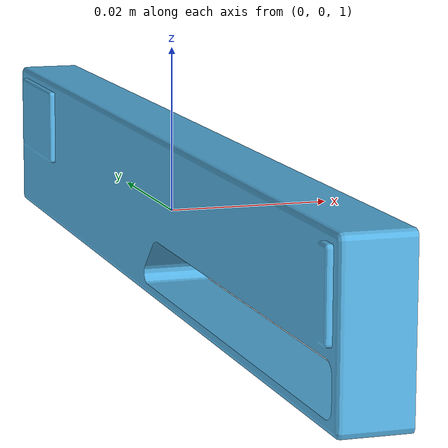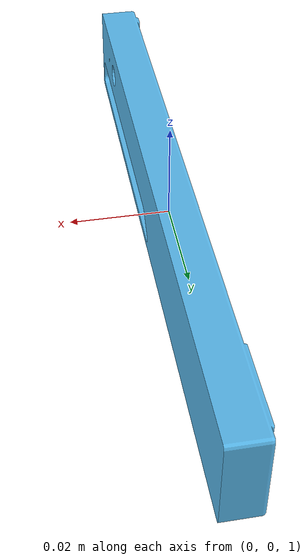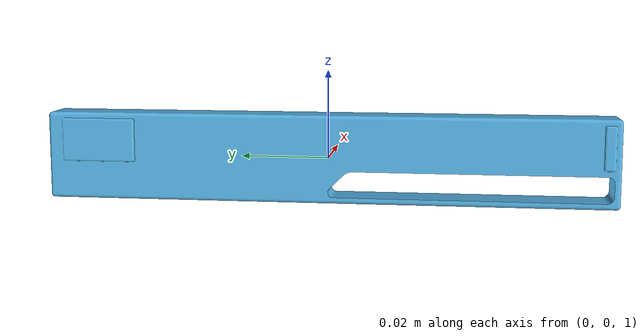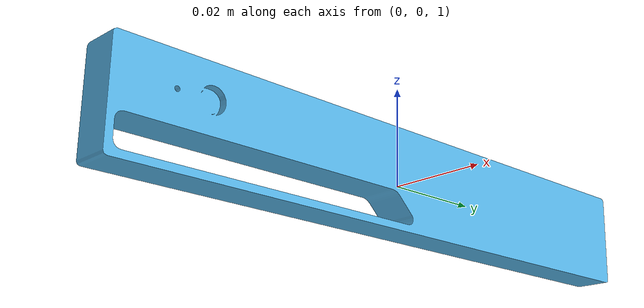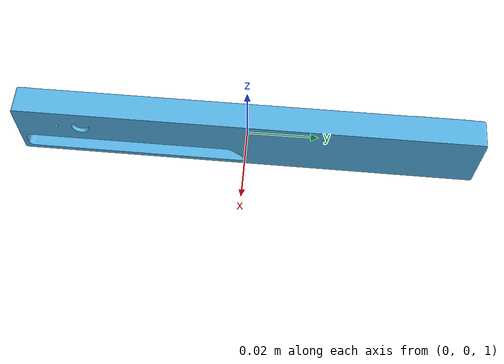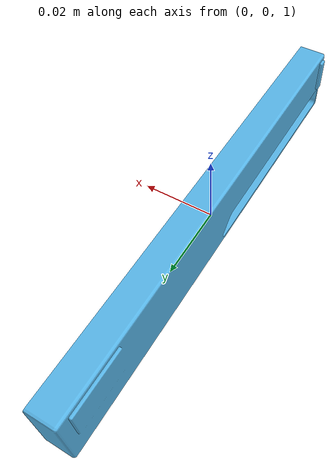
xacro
<?xml version="1.0"?>
<!--Develped by Daniel Ordonez 22.05.2018 - daniels.ordonez@gmail.com
  INFORMATION:
    This is an example of how to use the realsense-rs200 macro function.
-->
<robot name="robot_with_rs200" xmlns:xacro="http://ros.org/wiki/xacro">
    <link name="world"/>

    <!-- Import macro for realsense-RS200 camera-->
    <xacro:include filename="$(find realsense_gazebo_plugin)/urdf/realsense-RS200.macro.xacro"/>
    <!-- Create camera instance -->
    <xacro:realsense-rs200 prefix="" parent="world">
        <origin xyz="0 0 1.0" rpy="0 0 0" />
    </xacro:realsense-rs200>
</robot>

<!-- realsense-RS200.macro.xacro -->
<robot xmlns:xacro="http://ros.org/wiki/xacro">
<xacro:macro name="realsense-rs200" params="prefix parent *origin">

    <!-- Camera link -->
    <link name="${prefix}rs200_camera">
        <visual>
            <origin rpy="0 0 0" xyz="0 0 0"/>
            <geometry>
                <mesh filename="package://realsense_gazebo_plugin/models/realsense_camera/meshes/realsense.dae"/>
            </geometry>
        </visual>
        <collision>
            <geometry>
                <box size="0.0078 0.130 0.0192"/>
            </geometry>
        </collision>
        <inertial>
            <mass value="0.0615752"/>
            <origin rpy="0 0 0" xyz="0 0 0"/>
            <inertia ixx="9.108e-05"
                     ixy="0"
                     ixz="0"
                     iyy="2.51e-06"
                     iyz="0"
                     izz="8.931e-05"
            />
        </inertial>
    </link>

    <!-- Connect camera to parent frame-->
    <joint name="${prefix}realsense_joint" type="fixed">
        <parent link="${parent}"/>
        <child link="${prefix}rs200_camera"/>
        <xacro:insert_block name="origin"/>
    </joint>

    <!-- Virtual links representing the cameras positons and orientations-->
    <link name="${prefix}color" />
    <link name="${prefix}depth" />
    <link name="${prefix}ired1" />
    <link name="${prefix}ired2" />

    <!-- Joints positioning the virtual links with respect to the camera main link-->
    <joint name="${prefix}color_joint" type="fixed">
        <parent link="${prefix}rs200_camera" />
        <child link="${prefix}color" />
        <!-- The default position is change since in Rviz the cloud depth axis is Z not X-->
        <!--origin xyz="0 -0.046 0.004" rpy="${pi/2} ${pi} ${pi/2}"/-->
        <origin xyz="0 0 0" rpy="${pi/2} ${pi} ${pi/2}"/>
    </joint>

    <joint name="${prefix}depth_joint" type="fixed">
        <parent link="${prefix}rs200_camera" />
        <child link="${prefix}depth" />
        <!--origin xyz="0 -0.03 0.004" rpy="0 0 0"/-->
        <origin xyz="0 0 0" rpy="${pi/2} ${pi} ${pi/2}"/>
    </joint>

    <joint name="${prefix}ired1_joint" type="fixed">
        <parent link="${prefix}rs200_camera" />
        <child link="${prefix}ired1" />
        <origin xyz="0 -0.06 0.004" rpy="0 0 0"/>
    </joint>

    <joint name="${prefix}ired2_joint" type="fixed">
        <parent link="${prefix}rs200_camera" />
        <child link="${prefix}ired2" />
        <origin xyz="0 0.01 0.004" rpy="0 0 0"/>
    </joint>

<!-- GAZEBO DEFINITIONS ***************************************-->

    <!-- Load plugin to the model ("robot" in urdf format)-->
    <gazebo>
        <plugin name="${prefix}r200" filename="librealsense_gazebo_plugin.so">
            <prefix>${prefix}</prefix>
        </plugin>
    </gazebo>

    <!-- Load parameters to model's main link-->
    <gazebo reference="${prefix}rs200_camera">
        <self_collide>0</self_collide>
        <enable_wind>0</enable_wind>
        <kinematic>0</kinematic>
        <gravity>1</gravity>
        <mu2>1</mu2>
        <fdir1>0 0 0</fdir1>
        <kp>1e+13</kp>
        <kd>1</kd>

        <sensor name="${prefix}color" type="camera">
            <pose frame="">0 0 0 0 0 0</pose>
            <camera name="${prefix}rs200_camera">
            <horizontal_fov>1.047</horizontal_fov>
            <image>
                <width>640</width>
                <height>480</height>
                <format>RGB_INT8</format>
            </image>
            <clip>
                <near>0.1</near>
                <far>100</far>
            </clip>
            <noise>
                <type>gaussian</type>
                <mean>0.0</mean>
                <stddev>0.007</stddev>
            </noise>
            </camera>
            <always_on>1</always_on>
            <update_rate>60</update_rate>
            <visualize>1</visualize>
        </sensor>
        <sensor name="${prefix}ired1" type="camera">
            <pose frame="">0 -0.06 0.004 0 0 0</pose>
            <camera name="${prefix}rs200_camera">
            <horizontal_fov>1.047</horizontal_fov>
            <image>
                <width>640</width>
                <height>480</height>
                <format>L_INT8</format>
            </image>
            <clip>
                <near>0.1</near>
                <far>100</far>
            </clip>
            <noise>
                <type>gaussian</type>
                <mean>0.0</mean>
                <stddev>0.05</stddev>
            </noise>
            </camera>
            <always_on>1</always_on>
            <update_rate>60</update_rate>
            <visualize>0</visualize>
        </sensor>
        <sensor name="${prefix}ired2" type="camera">
            <pose frame="">0 0.01 0.004 0 0 0</pose>
            <camera name="${prefix}rs200_camera">
            <horizontal_fov>1.047</horizontal_fov>
            <image>
                <width>640</width>
                <height>480</height>
                <format>L_INT8</format>
            </image>
            <clip>
                <near>0.1</near>
                <far>100</far>
            </clip>
            <noise>
                <type>gaussian</type>
                <mean>0.0</mean>
                <stddev>0.05</stddev>
            </noise>
            </camera>
            <always_on>1</always_on>
            <update_rate>60</update_rate>
            <visualize>0</visualize>
        </sensor>
        <sensor name="${prefix}depth" type="depth">
            <pose frame="">0 0 0 0 0 0</pose>
            <camera name="${prefix}rs200_camera">
            <horizontal_fov>1.047</horizontal_fov>
            <image>
                    <width>640</width>
                    <height>480</height>
            </image>
            <clip>
                    <near>0.1</near>
                    <far>100</far>
            </clip>
            <noise>
                    <type>gaussian</type>
                    <mean>0.0</mean>
                    <stddev>0.100</stddev>
            </noise>
            </camera>
            <always_on>1</always_on>
            <update_rate>60</update_rate>
            <visualize>0</visualize>
        </sensor>
    </gazebo>

</xacro:macro>
</robot>
